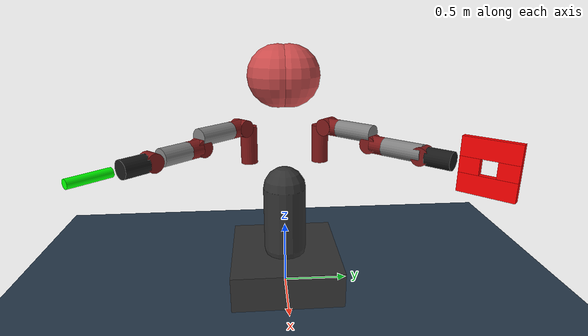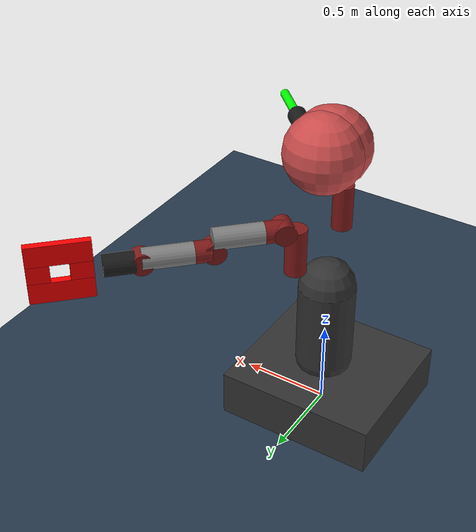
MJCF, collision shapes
<?xml version='1.0' encoding='utf8'?>
<mujoco model="base">
	<compiler angle="radian" meshdir="meshes/" />
	<option cone="elliptic" impratio="20" />
	<size nconmax="5000" njmax="5000" />

	<asset>
	<texture builtin="gradient" height="256" rgb1=".9 .9 1." rgb2=".2 .3 .4" type="skybox" width="256" />
		<texture builtin="checker" height="512" name="texplane" rgb1=".2 .3 .4" rgb2=".1 0.15 0.2" type="2d" width="512" />
		<material name="floorplane" reflectance="0.5" texrepeat="1 1" texture="texplane" texuniform="true" />
	<mesh file="/Users/ajaymandlekar/MujocoManipulation/robosuite/models/assets/robots/baxter/meshes/torso/base_link.STL" name="base_link" />
    <mesh file="/Users/ajaymandlekar/MujocoManipulation/robosuite/models/assets/robots/baxter/meshes/torso/base_link_collision.STL" name="base_link_collision" />
    <mesh file="/Users/ajaymandlekar/MujocoManipulation/robosuite/models/assets/robots/baxter/meshes/base/PEDESTAL.STL" name="PEDESTAL" />
    <mesh file="/Users/ajaymandlekar/MujocoManipulation/robosuite/models/assets/robots/baxter/meshes/base/pedestal_link_collision.STL" name="pedestal_link_collision" />
    <mesh file="/Users/ajaymandlekar/MujocoManipulation/robosuite/models/assets/robots/baxter/meshes/head/H0.STL" name="H0" />
    <mesh file="/Users/ajaymandlekar/MujocoManipulation/robosuite/models/assets/robots/baxter/meshes/head/H1.STL" name="H1" />
    <mesh file="/Users/ajaymandlekar/MujocoManipulation/robosuite/models/assets/robots/baxter/meshes/upper_shoulder/S0.STL" name="S0" />
    <mesh file="/Users/ajaymandlekar/MujocoManipulation/robosuite/models/assets/robots/baxter/meshes/lower_shoulder/S1.STL" name="S1" />
    <mesh file="/Users/ajaymandlekar/MujocoManipulation/robosuite/models/assets/robots/baxter/meshes/upper_elbow/E0.STL" name="E0" />
    <mesh file="/Users/ajaymandlekar/MujocoManipulation/robosuite/models/assets/robots/baxter/meshes/lower_elbow/E1.STL" name="E1" />
    <mesh file="/Users/ajaymandlekar/MujocoManipulation/robosuite/models/assets/robots/baxter/meshes/upper_forearm/W0.STL" name="W0" />
    <mesh file="/Users/ajaymandlekar/MujocoManipulation/robosuite/models/assets/robots/baxter/meshes/lower_forearm/W1.STL" name="W1" />
    <mesh file="/Users/ajaymandlekar/MujocoManipulation/robosuite/models/assets/robots/baxter/meshes/wrist/W2.STL" name="W2" />
    <mesh file="/Users/ajaymandlekar/MujocoManipulation/robosuite/models/assets/robots/baxter/meshes/electric_gripper/fingers/paddle_tip.STL" name="paddle_tip" />
  </asset>

	<actuator>
	<velocity ctrllimited="true" ctrlrange="-2 2" joint="right_s0" kv="60" />
    <velocity ctrllimited="true" ctrlrange="-2 2" joint="right_s1" kv="50" />
    <velocity ctrllimited="true" ctrlrange="-2 2" joint="right_e0" kv="20" />
    <velocity ctrllimited="true" ctrlrange="-2 2" joint="right_e1" kv="20" />
    <velocity ctrllimited="true" ctrlrange="-4 4" joint="right_w0" kv="5" />
    <velocity ctrllimited="true" ctrlrange="-4 4" joint="right_w1" kv="5" />
    <velocity ctrllimited="true" ctrlrange="-4 4" joint="right_w2" kv="5" />

    <velocity ctrllimited="true" ctrlrange="-2 2" joint="left_s0" kv="60" />
    <velocity ctrllimited="true" ctrlrange="-2 2" joint="left_s1" kv="50" />
    <velocity ctrllimited="true" ctrlrange="-2 2" joint="left_e0" kv="20" />
    <velocity ctrllimited="true" ctrlrange="-2 2" joint="left_e1" kv="20" />
    <velocity ctrllimited="true" ctrlrange="-4 4" joint="left_w0" kv="5" />
    <velocity ctrllimited="true" ctrlrange="-4 4" joint="left_w1" kv="5" />
    <velocity ctrllimited="true" ctrlrange="-4 4" joint="left_w2" kv="5" />

</actuator>

	<worldbody>
	<geom condim="3" material="floorplane" name="floor" pos="0 0 0" size="3 3 .125" type="plane" />
		<light diffuse=".8 .8 .8" dir="0 -.15 -1" directional="false" pos="1 1 4.0" specular="0.3 0.3 0.3" />
		<light diffuse=".8 .8 .8" dir="0 -.15 -1" directional="false" pos="-3. -3. 4.0" specular="0.3 0.3 0.3" />

		<camera mode="fixed" name="frontview" pos="3.0 0 1.85" quat="0.56 0.43 0.43 0.56" />

		<camera mode="fixed" name="birdview" pos="0.0 0 3.0" quat="0.7071 0 0 0.7071" />

		<camera mode="fixed" name="tabletop" pos="3.0 0 1.85" quat="0.56 0.43 0.43 0.56" />
	<body name="base" pos="0.0 0.0 0.913">
      <inertial diaginertia="0.001 0.001 0.001" mass="10" pos="0 0 0" />
      <body name="collision_head_link_1" pos="0.11 0 0.75">
        <inertial diaginertia="1e-008 1e-008 1e-008" mass="0.0001" pos="0 0 0" />
        <geom class="viz" margin="0.001" pos="0 0 0" rgba="0.8 0.3 0.3 0.3" size="0.001" type="sphere" />
        <geom margin="0.001" pos="-0.07 -0.04 0" rgba="0.8 0.3 0.3 0.3" size="0.22" type="sphere" />
      </body>
      <body name="collision_head_link_2" pos="0.11 0 0.75">
        <inertial diaginertia="1e-008 1e-008 1e-008" mass="0.0001" pos="0 0 0" />
        <geom margin="0.001" pos="0 0 0" rgba="0.8 0.3 0.3 0.3" size="0.001" type="sphere" />
        <geom margin="0.001" pos="-0.07 0.04 0" rgba="0.8 0.3 0.3 0.3" size="0.22" type="sphere" />
      </body>
      <body name="torso" pos="0 0 0">
        <inertial diaginertia="1.87139 1.66268 0.779991" mass="35.3365" pos="0 0 0" quat="0.997433 0.00167178 0.0715546 -0.00209003" />
        <geom class="viz" margin="0.001" mesh="base_link" />
        <geom class="viz" margin="0.001" mesh="base_link_collision" type="mesh" />
        <body name="pedestal" pos="0 0 0">
          <inertial diaginertia="6.0869 5.81635 4.20915" mass="60.864" pos="0 0 0" quat="0.659267 -0.259505 -0.260945 0.655692" />
          <geom class="viz" margin="0.001" mesh="PEDESTAL" rgba="0.2 0.2 0.2 1" />
          <geom margin="0.001" pos="-.04 0 -.8" rgba="0.2 0.2 0.2 1" size=".46 .425 .16" type="box" />
          <geom margin="0.001" pos="0 0 -.35" rgba="0.2 0.2 0.2 1" size=".165 .25" type="capsule" />
        </body>
        <body name="head" pos="0.06 0 0.686">
          <inertial diaginertia="0.00474065 0.00461087 0.00199949" mass="0.547767" pos="0 0 0" quat="0.339345 0.850736 -0.347392 0.201027" />
          <joint armature=".01" axis="0 0 1" damping="0" limited="true" name="head_pan" pos="0 0 0" range="-1.5708 1.5708" type="hinge" />
          <geom class="viz" margin="0.001" mesh="H0" rgba="0.2 0.2 0.2 1" />
          <body name="screen" pos="0.1227 0 0" quat="0.453099 0.542864 0.542864 0.453099">
            <inertial diaginertia="0.0040484 0.00275826 0.00150834" mass="0.440171" pos="0 0 0" quat="0.995785 0.0113501 -0.000390852 0.0910132" />
            <geom class="viz" euler="0 -1.57 0" margin="0.001" mesh="H1" pos="0 0 -.03" rgba="0.5 0.1 0.1 1" />
            <geom class="viz" margin="0.001" name="display" pos="0 -0.016 0" quat="0.991445 0.130526 0 0" rgba=".9 .9 .9 1" size="0.109 0.08 0.002" type="box" />
          </body>
        </body>
        <body name="right_arm_mount" pos="0.024645 -0.219645 0.118588" quat="0.923879 0 0 -0.382684">
          <inertial diaginertia="1e-008 1e-008 1e-008" mass="0.0001" pos="0 0 0" />
          <body name="right_upper_shoulder" pos="0.055695 0 0.011038">
            <inertial diaginertia="0.0498344 0.0377511 0.0331351" mass="5.70044" pos="0.01783 0.00086 0.19127" quat="0.975667 0.0673303 -0.206117 0.0325173" />
            <joint armature=".01" axis="0 0 1" damping="0" limited="true" name="right_s0" pos="0 0 0" range="-1.70168 1.70168" type="hinge" />
            <geom class="viz" margin="0.001" mesh="S0" rgba="0.5 0.1 0.1 1" />
            <geom margin="0.001" pos="0 0 0.1361" rgba="0.5 0.1 0.1 1" size="0.06 0.1361" type="cylinder" />
            <body name="right_lower_shoulder" pos="0.069 0 0.27035" quat="0.707107 -0.707107 0 0">
              <inertial diaginertia="0.0278991 0.0212327 0.0112937" mass="3.22698" pos="0.06845 0.00269 -0.00529" quat="0.447487 0.536948 0.56425 0.439391" />
              <joint armature=".01" axis="0 0 1" damping="0" limited="true" name="right_s1" pos="0 0 0" range="-2.147 1.047" type="hinge" />
              <geom class="viz" margin="0.001" mesh="S1" rgba="0.5 0.1 0.1 1" />
              <geom margin="0.001" pos="0 0 0" rgba="0.5 0.1 0.1 1" size="0.06 0.06" type="cylinder" />
              <body name="right_upper_elbow" pos="0.102 0 0" quat="0.5 0.5 0.5 0.5">
                <inertial diaginertia="0.0287695 0.0273625 0.011409" mass="4.31272" pos="-0.00276 0.00132 0.18086" quat="0.838995 -0.0423128 -0.121287 0.52876" />
                <joint armature=".01" axis="0 0 1" damping="0" limited="true" name="right_e0" pos="0 0 0" range="-3.05418 3.05418" type="hinge" />
                <geom class="viz" margin="0.001" mesh="E0" rgba="0.5 0.1 0.1 1" />
                <geom margin="0.001" pos="0 0 -0.0535" rgba="0.5 0.1 0.1 1" size="0.06 0.0535" type="cylinder" />
                <geom class="viz" margin="0.001" name="right_upper_elbow_visual" pos="0 0 0.1365" size="0.06 0.1365" type="cylinder" />
                <body name="right_lower_elbow" pos="0.069 0 0.26242" quat="0.5 -0.5 -0.5 -0.5">
                  <inertial diaginertia="0.0132096 0.00950002 0.00685697" mass="2.07206" pos="0.02611 0.00159 -0.01117" quat="0.440433 0.577149 0.562777 0.395221" />
                  <joint armature=".01" axis="0 0 1" damping="0" limited="true" name="right_e1" pos="0 0 0" range="-0.05 2.618" type="hinge" />
                  <geom class="viz" margin="0.001" mesh="E1" rgba="0.5 0.1 0.1 1" />
                  <geom margin="0.001" pos="0 0 0" rgba="0.5 0.1 0.1 1" size="0.06 0.05" type="cylinder" />
                  <body name="right_upper_forearm" pos="0.10359 0 0" quat="0.5 0.5 0.5 0.5">
                    <inertial diaginertia="0.016916 0.0165511 0.00371123" mass="2.24665" pos="-0.00168 0.0046 0.13952" quat="0.892709 -0.0256256 0.00446984 0.449882" />
                    <joint armature=".01" axis="0 0 1" damping="0" limited="true" name="right_w0" pos="0 0 0" range="-3.059 3.059" type="hinge" />
                    <geom class="viz" margin="0.001" mesh="W0" rgba="0.5 0.1 0.1 1" />
                    <geom margin="0.001" pos="0 0 -0.044" rgba="0.5 0.1 0.1 1" size="0.06 0.044" type="cylinder" />
                    <geom class="viz" margin="0.001" name="right_upper_forearm_visual" pos="0 0 0.1" size="0.06 0.1036" type="cylinder" />
                    <body name="right_lower_forearm" pos="0.01 0 0.2707" quat="0.5 -0.5 -0.5 -0.5">
                      <inertial diaginertia="0.00708828 0.00552689 0.00379383" mass="1.60979" pos="0.06041 0.00697 0.006" quat="0.456911 0.468526 0.475683 0.587743" />
                      <joint armature=".01" axis="0 0 1" damping="0" limited="true" name="right_w1" pos="0 0 0" range="-1.5708 2.094" type="hinge" />
                      <geom class="viz" margin="0.001" mesh="W1" rgba="0.5 0.1 0.1 1" />
                      <geom margin="0.001" pos="0 0 0" rgba="0.5 0.1 0.1 1" size="0.06 0.05" type="cylinder" />
                      <body name="right_wrist" pos="0.115975 0 0" quat="0.5 0.5 0.5 0.5">
                        <inertial diaginertia="0.0003082 0.000269928 0.000251035" mass="0.35093" pos="0.00198 0.00125 0.01855" quat="0.0594843 0.68926 -0.16016 0.704082" />
                        <joint armature=".01" axis="0 0 1" damping="0" limited="true" name="right_w2" pos="0 0 0" range="-3.059 3.059" type="hinge" />
                        <geom class="viz" margin="0.001" mesh="W2" rgba="0.1 0.1 0.1 1" />
                        <geom margin="0.001" pos="0 0 0" rgba="0.1 0.1 0.1 1" size="0.06 0.0825" type="cylinder" />
                        <body name="right_hand" pos="0 0 0.11355">

                        <body name="cylinder" pos="0 0 0.15"><geom density="1000" friction="1 0.005 0.0001" group="1" name="cylinder" pos="0 0 0" rgba="0 1 0 1" size="0.02923936877746436 0.13" type="cylinder" /><site name="cylinder" pos="0 0 0" rgba="1 0 0 1" size="0.002 0.002 0.002" type="sphere" /></body></body>
                      </body>
                    </body>
                  </body>
                </body>
              </body>
            </body>
          </body>
        </body>
        <body name="left_arm_mount" pos="0.024645 0.219645 0.118588" quat="0.923879 0 0 0.382684">
          <inertial diaginertia="1e-008 1e-008 1e-008" mass="0.0001" pos="0 0 0" />
          <body name="left_upper_shoulder" pos="0.055695 0 0.011038">
            <inertial diaginertia="0.0498344 0.0377511 0.0331351" mass="5.70044" pos="0.01783 0.00086 0.19127" quat="0.975667 0.0673303 -0.206117 0.0325173" />
            <joint armature=".01" axis="0 0 1" damping="0" limited="true" name="left_s0" pos="0 0 0" range="-1.70168 1.70168" type="hinge" />
            <geom class="viz" margin="0.001" mesh="S0" rgba="0.5 0.1 0.1 1" />
            <geom margin="0.001" pos="0 0 0.1361" rgba="0.5 0.1 0.1 1" size="0.06 0.1361" type="cylinder" />
            <body name="left_lower_shoulder" pos="0.069 0 0.27035" quat="0.707107 -0.707107 0 0">
              <inertial diaginertia="0.0278991 0.0212327 0.0112937" mass="3.22698" pos="0.06845 0.00269 -0.00529" quat="0.447487 0.536948 0.56425 0.439391" />
              <joint armature=".01" axis="0 0 1" damping="0" limited="true" name="left_s1" pos="0 0 0" range="-2.147 1.047" type="hinge" />
              <geom class="viz" margin="0.001" mesh="S1" rgba="0.5 0.1 0.1 1" />
              <geom margin="0.001" pos="0 0 0" rgba="0.5 0.1 0.1 1" size="0.06 0.06" type="cylinder" />
              <body name="left_upper_elbow" pos="0.102 0 0" quat="0.5 0.5 0.5 0.5">
                <inertial diaginertia="0.0287695 0.0273625 0.011409" mass="4.31272" pos="-0.00276 0.00132 0.18086" quat="0.838995 -0.0423128 -0.121287 0.52876" />
                <joint armature=".01" axis="0 0 1" damping="0" limited="true" name="left_e0" pos="0 0 0" range="-3.05418 3.05418" type="hinge" />
                <geom class="viz" margin="0.001" mesh="E0" rgba="0.5 0.1 0.1 1" />
                <geom margin="0.001" pos="0 0 -0.0535" rgba="0.5 0.1 0.1 1" size="0.06 0.0535" type="cylinder" />
                <geom class="viz" margin="0.001" name="left_upper_elbow_visual" pos="0 0 0.1365" size="0.06 0.1365" type="cylinder" />
                <body name="left_lower_elbow" pos="0.069 0 0.26242" quat="0.5 -0.5 -0.5 -0.5">
                  <inertial diaginertia="0.0132096 0.00950002 0.00685697" mass="2.07206" pos="0.02611 0.00159 -0.01117" quat="0.440433 0.577149 0.562777 0.395221" />
                  <joint armature=".01" axis="0 0 1" damping="0" limited="true" name="left_e1" pos="0 0 0" range="-0.05 2.618" type="hinge" />
                  <geom class="viz" margin="0.001" mesh="E1" rgba="0.5 0.1 0.1 1" />
                  <geom margin="0.001" pos="0 0 0" rgba="0.5 0.1 0.1 1" size="0.06 0.05" type="cylinder" />
                  <body name="left_upper_forearm" pos="0.10359 0 0" quat="0.5 0.5 0.5 0.5">
                    <inertial diaginertia="0.016916 0.0165511 0.00371123" mass="2.24665" pos="-0.00168 0.0046 0.13952" quat="0.892709 -0.0256256 0.00446984 0.449882" />
                    <joint armature=".01" axis="0 0 1" damping="0" limited="true" name="left_w0" pos="0 0 0" range="-3.059 3.059" type="hinge" />
                    <geom class="viz" margin="0.001" mesh="W0" rgba="0.5 0.1 0.1 1" />
                    <geom margin="0.001" pos="0 0 -0.044" rgba="0.5 0.1 0.1 1" size="0.06 0.044" type="cylinder" />
                    <geom class="viz" margin="0.001" name="left_upper_forearm_visual" pos="0 0 0.136" size="0.06 0.136" type="cylinder" />
                    <body name="left_lower_forearm" pos="0.01 0 0.2707" quat="0.5 -0.5 -0.5 -0.5">
                      <inertial diaginertia="0.00708828 0.00552689 0.00379383" mass="1.60979" pos="0.06041 0.00697 0.006" quat="0.456911 0.468526 0.475683 0.587743" />
                      <joint armature=".01" axis="0 0 1" damping="0" limited="true" name="left_w1" pos="0 0 0" range="-1.5708 2.094" type="hinge" />
                      <geom class="viz" margin="0.001" mesh="W1" rgba="0.5 0.1 0.1 1" />
                      <geom margin="0.001" pos="0 0 0" rgba="0.5 0.1 0.1 1" size="0.06 0.05" type="cylinder" />
                      <body name="left_wrist" pos="0.115975 0 0" quat="0.5 0.5 0.5 0.5">
                        <inertial diaginertia="0.0003082 0.000269928 0.000251035" mass="0.35093" pos="0.00198 0.00125 0.01855" quat="0.0594843 0.68926 -0.16016 0.704082" />
                        <joint armature=".01" axis="0 0 1" damping="0" limited="true" name="left_w2" pos="0 0 0" range="-3.059 3.059" type="hinge" />
                        <geom class="viz" margin="0.001" mesh="W2" rgba="0.1 0.1 0.1 1" />
                        <geom margin="0.001" pos="0 0 0" rgba="0.1 0.1 0.1 1" size="0.06 0.0825" type="cylinder" />
                        <body name="left_hand" pos="0 0 0.11355">

                        <body name="hole" pos="0.11 0 0.18" quat="0 0 0.707 0.707">
			<geom group="1" pos="0 0 0" rgba="1 0 0 1" size="0.06 0.17 0.02" type="box" />
			<geom group="1" pos="0.22 0 0" rgba="1 0 0 1" size="0.06 0.17 0.02" type="box" />
			<geom group="1" pos="0.11 0.11 0" rgba="1 0 0 1" size="0.05 0.06 0.02" type="box" />
			<geom group="1" pos="0.11 -0.11 0" rgba="1 0 0 1" size="0.05 0.06 0.02" type="box" />
		<site name="hole" pos="0 0 0" rgba="1 0 0 1" size="0.002 0.002 0.002" type="sphere" /></body>
		</body>
                      </body>
                    </body>
                  </body>
                </body>
              </body>
            </body>
          </body>
        </body>
      </body>
    </body>
  </worldbody>

	<equality>
	</equality>
<contact><exclude body1="right_upper_shoulder" body2="torso" />
    <exclude body1="right_upper_shoulder" body2="right_upper_elbow" />
    <exclude body1="right_lower_shoulder" body2="torso" />
    <exclude body1="left_upper_shoulder" body2="torso" />
    <exclude body1="left_upper_shoulder" body2="left_upper_elbow" />
    <exclude body1="left_lower_shoulder" body2="torso" />
    <exclude body1="collision_head_link_1" body2="torso" />
    <exclude body1="collision_head_link_2" body2="torso" />
  </contact><default><default class="viz">
      <geom conaffinity="0" contype="0" group="1" margin="0.001" type="mesh" />
    </default>
  </default></mujoco>
